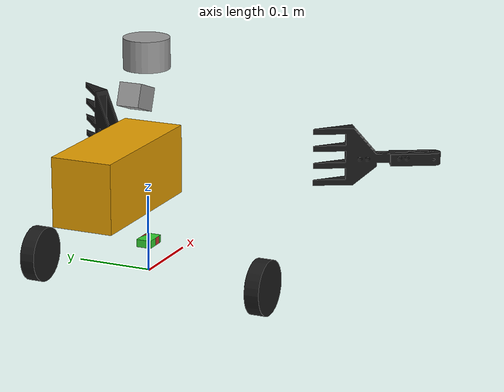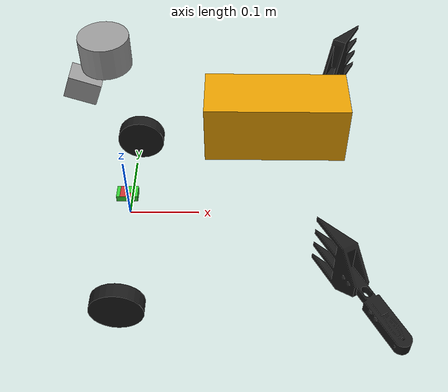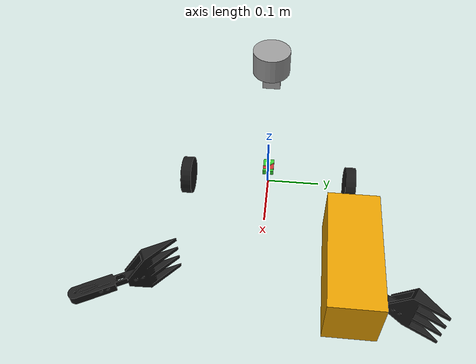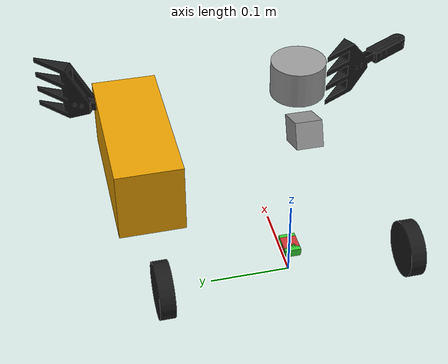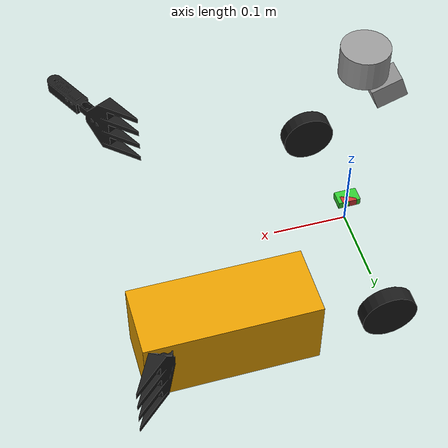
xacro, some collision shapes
<?xml version="1.0"?>
<robot name="BRT7K" xmlns:xacro="http://www.ros.org/wiki/xacro">
  <xacro:arg name="wheel_radius" default="0.03660"/>
  <xacro:arg name="wheel_width" default="0.0200"/>
  <xacro:arg name="wheel_y" default="0.1610"/>

  <xacro:arg name="gripper_x" default="0.3"/>
  <xacro:arg name="gripper_y" default="0.2"/>
  <xacro:arg name="gripper_z" default="0.1"/>
  <xacro:arg name="gripper_yaw" default="0.0"/>

  <xacro:property name="base_length" value="0.425"/>
  <xacro:property name="base_width"  value="0.389"/>
  <xacro:property name="base_height" value="0.004"/>

  <xacro:property name="wheel_radius" value="$(arg wheel_radius)"/>
  <xacro:property name="wheel_width"  value="$(arg wheel_width)"/>
  <xacro:property name="wheel_x"      value="0.0"/>
  <xacro:property name="wheel_y"      value="$(arg wheel_y)"/>
  <xacro:property name="wheel_z"      value="0.0"/>

  <xacro:property name="gripper_x" value="$(arg gripper_x)"/>
  <xacro:property name="gripper_y" value="$(arg gripper_y)"/>
  <xacro:property name="gripper_z" value="$(arg gripper_z)"/>
  <xacro:property name="gripper_yaw" value="$(arg gripper_yaw)"/>
  <xacro:property name="gripper_length" value="0.1"/>
  <xacro:property name="gripper_width" value="0.1"/>
  <xacro:property name="gripper_height" value="0.1"/>

  <xacro:property name="laser_x" value="0.0"/>
  <xacro:property name="laser_y" value="0.0"/>
  <xacro:property name="laser_z" value="0.29"/>
  <xacro:property name="laser_roll" value="3.14159265359"/>
  <xacro:property name="laser_yaw" value="0.0"/>

  <xacro:property name="imu_x" value="0.0"/>
  <xacro:property name="imu_y" value="0.0"/>
  <xacro:property name="imu_z" value="0.04"/>

  <xacro:property name="mag_x" value="0.0"/>
  <xacro:property name="mag_y" value="0.0"/>
  <xacro:property name="mag_z" value="0.04"/>

  <xacro:property name="camera_x" value="-0.03172"/>
  <xacro:property name="camera_y" value="0.0"/>
  <xacro:property name="camera_z" value="0.2402"/>
  <xacro:property name="camera_p" value="0.3562"/>

  <material name="blue">
    <color rgba="0.2 0.4 0.8 1.0"/>
  </material>
  <material name="black">
    <color rgba="0.1 0.1 0.1 1.0"/>
  </material>
  <material name="gray">
    <color rgba="0.6 0.6 0.6 1.0"/>
  </material>
  <material name="green">
    <color rgba="0.2 0.8 0.2 1.0"/>
  </material>
  <material name="red">
    <color rgba="0.8 0.2 0.2 1.0"/>
  </material>

  <link name="base_link">
    <visual>
      <origin xyz="-0.003435 -0.000615 0" rpy="0 0 1.57079632679"/>
      <geometry>
        <mesh filename="package://robot_description/meshes/BRT7K.stl" scale="0.001 0.001 0.001"/>
      </geometry>
    </visual>

    <collision>
      <origin xyz="0.215 0.155 0.05" rpy="0 0 0"/>
      <geometry>
        <box size="0.22 0.09 0.10"/>
      </geometry>
    </collision>

    <collision>
      <origin xyz="0.215 -0.155 0.05" rpy="0 0 0"/>
      <geometry>
        <box size="0.22 0.09 0.10"/>
      </geometry>
    </collision>

    <collision>
      <origin xyz="-0.10 0.0 0.05" rpy="0 0 0"/>
      <geometry>
        <box size="0.41 0.4 0.10"/>
      </geometry>
    </collision>
  </link>

  <link name="base_footprint"/>

  <joint name="base_joint" type="fixed">
    <parent link="base_link"/>
    <child link="base_footprint"/>
    <origin xyz="0 0 0" rpy="0 0 0"/>
  </joint>

  <xacro:macro name="wheel" params="name x y z">
    <link name="${name}">
      <visual>
        <origin xyz="0 0 0" rpy="1.57079632679 0 0"/>
        <geometry>
          <cylinder radius="${wheel_radius}" length="${wheel_width}"/>
        </geometry>
        <material name="black"/>
      </visual>

      <collision>
        <origin xyz="0 0 0" rpy="1.57079632679 0 0"/>
        <geometry>
          <cylinder radius="${wheel_radius}" length="${wheel_width}"/>
        </geometry>
      </collision>
    </link>

    <joint name="${name}_joint" type="continuous">
      <parent link="base_link"/>
      <child link="${name}"/>
      <origin xyz="${x} ${y} ${z}" rpy="0 0 0"/>
      <axis xyz="0 1 0"/>
    </joint>
  </xacro:macro>

  <xacro:wheel name="left_wheel_link"  x="${wheel_x}" y="${wheel_y}"  z="${wheel_z}"/>
  <xacro:wheel name="right_wheel_link" x="${wheel_x}" y="-${wheel_y}" z="${wheel_z}"/>

  <xacro:macro name="gripper" params="name x y z yaw mesh_file visual_x visual_y visual_z">
    <link name="${name}">
      <visual>
        <origin xyz="${visual_x} ${visual_y} ${visual_z}" rpy="0 0 0"/>
        <geometry>
          <mesh filename="package://robot_description/meshes/${mesh_file}" scale="0.001 0.001 0.001"/>
        </geometry>
        <material name="black"/>
      </visual>

      <collision>
        <origin xyz="${gripper_length/2.0} 0 0" rpy="0 0 0"/>
        <geometry>
          <box size="${gripper_length} ${gripper_width} ${gripper_height}"/>
        </geometry>
      </collision>
    </link>

    <joint name="${name}_joint" type="revolute">
      <parent link="base_link"/>
      <child link="${name}"/>
      <origin xyz="${x} ${y} ${z}" rpy="0 0 ${yaw}"/>
      <axis xyz="0 0 1"/>
      <limit lower="0" upper="3.145" effort="1.0" velocity="1.0"/>
    </joint>
  </xacro:macro>

  <xacro:gripper
    name="left_gripper_link"
    x="${gripper_x}"
    y="${gripper_y}"
    z="${gripper_z}"
    yaw="${gripper_yaw}"
    mesh_file="gripper_left.stl"
    visual_x="0.106920"
    visual_y="-0.165493"
    visual_z="-0.031400"/>

  <xacro:gripper
    name="right_gripper_link"
    x="${gripper_x}"
    y="-${gripper_y}"
    z="${gripper_z}"
    yaw="-${gripper_yaw}"
    mesh_file="gripper_right.stl"
    visual_x="-0.106894"
    visual_y="-0.165477"
    visual_z="-0.019400"/>

  <link name="laser_link">
    <visual>
      <origin xyz="0 0 0" rpy="0 0 0"/>
      <geometry>
        <cylinder radius="0.03" length="0.04"/>
      </geometry>
      <material name="gray"/>
    </visual>
  </link>

  <joint name="laser_joint" type="fixed">
    <parent link="base_link"/>
    <child link="laser_link"/>
    <origin xyz="${laser_x} ${laser_y} ${laser_z}" rpy="${laser_roll} 0 ${laser_yaw}"/>
  </joint>

  <link name="imu_link">
    <visual>
      <origin xyz="0 0 0" rpy="0 0 3.145"/>
      <geometry>
        <box size="0.03 0.02 0.01"/>
      </geometry>
      <material name="green"/>
    </visual>
  </link>

  <joint name="imu_joint" type="fixed">
    <parent link="base_link"/>
    <child link="imu_link"/>
    <origin xyz="${imu_x} ${imu_y} ${imu_z}" rpy="0 0 3.145"/>
  </joint>

  <link name="magnetometer_link">
    <visual>
      <origin xyz="0 0 0" rpy="0 0 0"/>
      <geometry>
        <box size="0.02 0.02 0.01"/>
      </geometry>
      <material name="red"/>
    </visual>
  </link>

  <joint name="magnetometer_joint" type="fixed">
    <parent link="base_link"/>
    <child link="magnetometer_link"/>
    <origin xyz="${mag_x} ${mag_y} ${mag_z}" rpy="0 0 0"/>
  </joint>

  <link name="camera_link">
    <visual>
      <origin xyz="0 0 0" rpy="0 0 0"/>
      <geometry>
        <box size="0.04 0.03 0.03"/>
      </geometry>
      <material name="gray"/>
    </visual>
  </link>

  <joint name="camera_joint" type="fixed">
    <parent link="base_link"/>
    <child link="camera_link"/>
    <origin xyz="${camera_x} ${camera_y} ${camera_z}" rpy="0 ${camera_p} 0"/>
  </joint>

  <link name="camera_optical_link"/>

  <joint name="camera_optical_joint" type="fixed">
    <parent link="camera_link"/>
    <child link="camera_optical_link"/>
    <origin xyz="0 0 0" rpy="-1.57079632679 0 -1.57079632679"/>
  </joint>

</robot>
